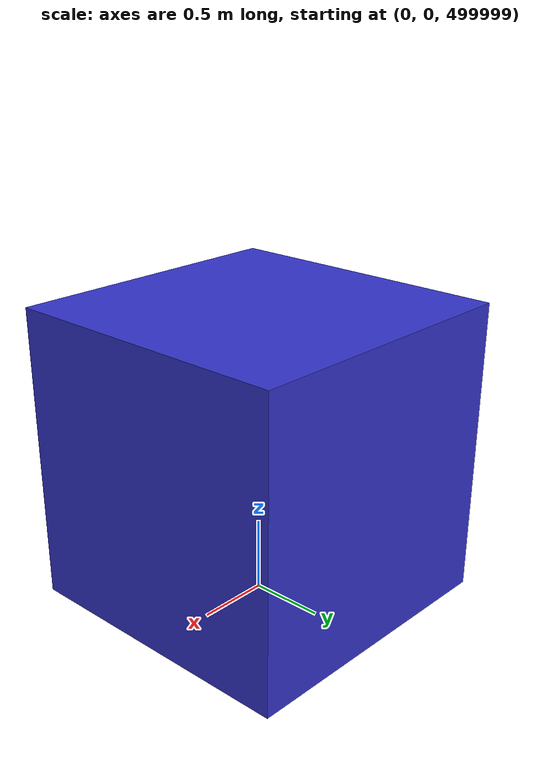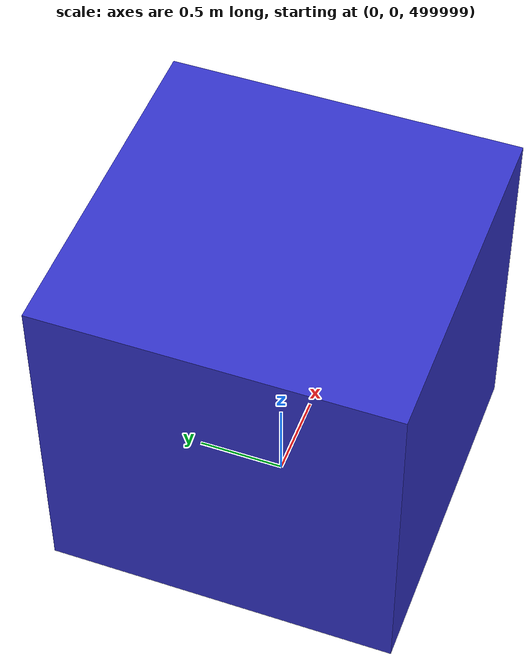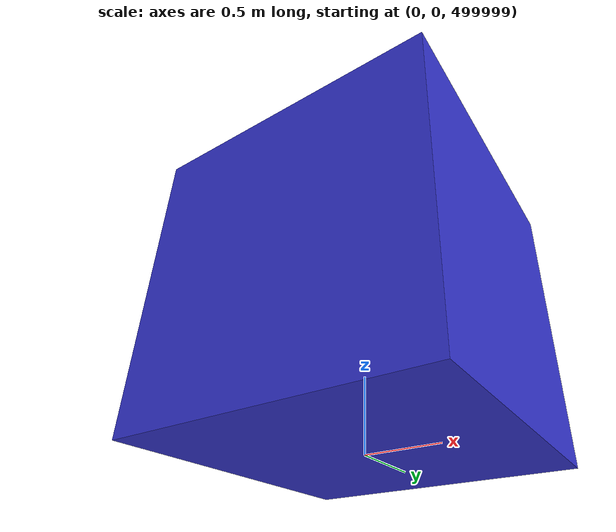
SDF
<sdf version="1.6">
  <model name="satellite">
    <link name="body">
      <pose>0 0 500000 0 0 0</pose> <!-- 500 km altitude -->
      <inertial>
        <mass>500.0</mass>
        <inertia>
          <ixx>100.0</ixx>
          <iyy>100.0</iyy>
          <izz>100.0</izz>
        </inertia>
      </inertial>
      <visual name="visual">
        <geometry>
          <box>
            <size>2 2 2</size>
          </box>
        </geometry>
        <material>
          <ambient>0.2 0.2 0.8 1</ambient>
        </material>
      </visual>
    </link>

    <plugin name="leo_gravity" filename="libleo_gravity_plugin.so">
      <ggm_file>$(find RSDS)/data/GGM05C.gfc</ggm_file>
    </plugin>
  </model>
</sdf>
